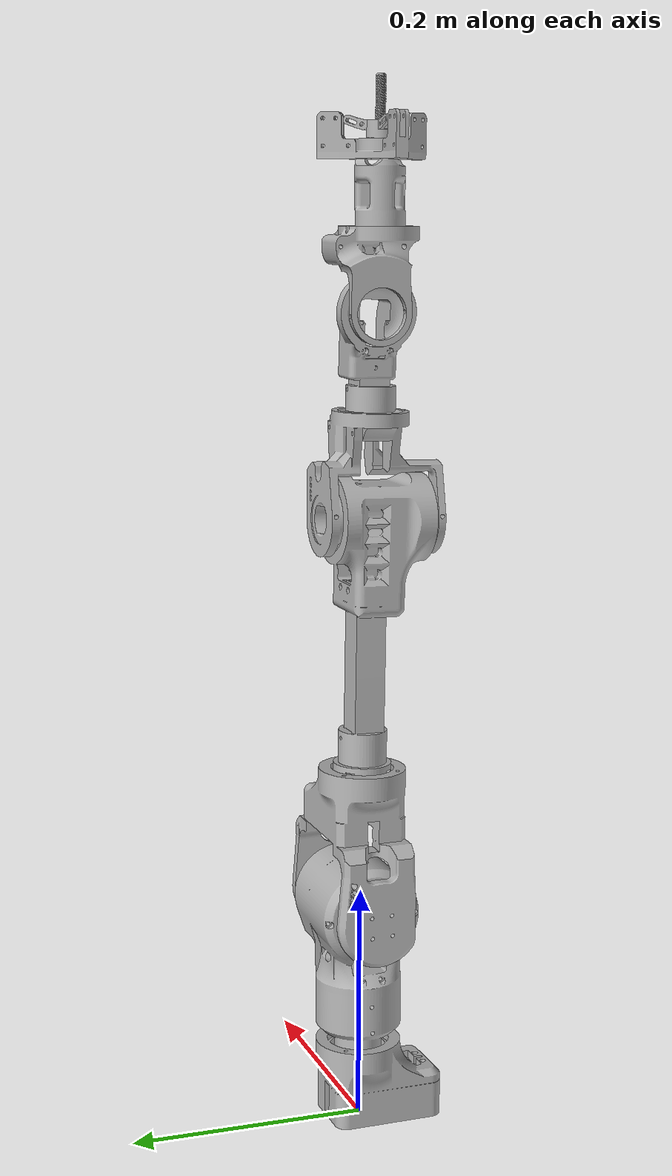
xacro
<?xml version="1.0"?>
<robot xmlns:xacro="http://www.ros.org/wiki/xacro" name="fixy">
    <xacro:arg name="initial_positions_file" default="initial_positions.yaml" />

    <!-- Import fixy urdf file -->
    <xacro:include filename="$(find fixy_description)/urdf/fixy.xacro" />

    <!-- Import control_xacro -->
    <xacro:include filename="fixy.ros2_control.xacro" />

    <xacro:fixy_ros2_control name="FakeSystem" initial_positions_file="$(arg initial_positions_file)"/>

</robot>

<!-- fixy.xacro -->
<robot name="fixy" xmlns:xacro="http://www.ros.org/wiki/xacro">

<xacro:include filename="$(find fixy_description)/urdf/materials.xacro" />
<xacro:include filename="$(find fixy_description)/urdf/fixy.trans" />
<xacro:include filename="$(find fixy_description)/urdf/fixy.gazebo" />
<link name="base_link">
  <inertial>
    <origin xyz="4.3079062075790375e-05 -0.014795380566219278 0.030297395235979695" rpy="0 0 0"/>
    <mass value="1.5044019346439317"/>
    <inertia ixx="0.001861" iyy="0.00125" izz="0.001987" ixy="8e-06" iyz="-0.00022" ixz="-0.0"/>
  </inertial>
  <visual>
    <origin xyz="0 0 0" rpy="0 0 0"/>
    <geometry>
      <mesh filename="file://$(find fixy_description)/meshes/base_link.stl" scale="0.001 0.001 0.001"/>
    </geometry>
    <material name="silver"/>
  </visual>
  <collision>
    <origin xyz="0 0 0" rpy="0 0 0"/>
    <geometry>
      <mesh filename="file://$(find fixy_description)/meshes/base_link.stl" scale="0.001 0.001 0.001"/>
    </geometry>
  </collision>
</link>

<link name="link_6_1">
  <inertial>
    <origin xyz="0.023034762419720613 -0.004152024854015311 0.043798002045938644" rpy="0 0 0"/>
    <mass value="0.3973316984109711"/>
    <inertia ixx="0.000278" iyy="0.000305" izz="0.000349" ixy="2.7e-05" iyz="2.8e-05" ixz="-9e-05"/>
  </inertial>
  <visual>
    <origin xyz="0.037069 -0.003608 -0.683318" rpy="0 0 0"/>
    <geometry>
      <mesh filename="file://$(find fixy_description)/meshes/link_6_1.stl" scale="0.001 0.001 0.001"/>
    </geometry>
    <material name="silver"/>
  </visual>
  <collision>
    <origin xyz="0.037069 -0.003608 -0.683318" rpy="0 0 0"/>
    <geometry>
      <mesh filename="file://$(find fixy_description)/meshes/link_6_1.stl" scale="0.001 0.001 0.001"/>
    </geometry>
  </collision>
</link>

<link name="link_5_1">
  <inertial>
    <origin xyz="-0.0026232713684426184 0.0016361880639096645 0.0476609582246732" rpy="0 0 0"/>
    <mass value="0.5073225606298909"/>
    <inertia ixx="0.000571" iyy="0.000518" izz="0.000188" ixy="-2e-06" iyz="-1e-05" ixz="5.7e-05"/>
  </inertial>
  <visual>
    <origin xyz="0.015158 -0.001576 -0.606138" rpy="0 0 0"/>
    <geometry>
      <mesh filename="file://$(find fixy_description)/meshes/link_5_1.stl" scale="0.001 0.001 0.001"/>
    </geometry>
    <material name="silver"/>
  </visual>
  <collision>
    <origin xyz="0.015158 -0.001576 -0.606138" rpy="0 0 0"/>
    <geometry>
      <mesh filename="file://$(find fixy_description)/meshes/link_5_1.stl" scale="0.001 0.001 0.001"/>
    </geometry>
  </collision>
</link>

<link name="link_4_1">
  <inertial>
    <origin xyz="0.003316988752488391 -0.03689039139940636 0.029627262461477955" rpy="0 0 0"/>
    <mass value="0.9221315203000184"/>
    <inertia ixx="0.002002" iyy="0.00135" izz="0.001306" ixy="1.1e-05" iyz="-0.000151" ixz="-2.7e-05"/>
  </inertial>
  <visual>
    <origin xyz="0.00947 -0.03292 -0.519576" rpy="0 0 0"/>
    <geometry>
      <mesh filename="file://$(find fixy_description)/meshes/link_4_1.stl" scale="0.001 0.001 0.001"/>
    </geometry>
    <material name="silver"/>
  </visual>
  <collision>
    <origin xyz="0.00947 -0.03292 -0.519576" rpy="0 0 0"/>
    <geometry>
      <mesh filename="file://$(find fixy_description)/meshes/link_4_1.stl" scale="0.001 0.001 0.001"/>
    </geometry>
  </collision>
</link>

<link name="link_3_1">
  <inertial>
    <origin xyz="-0.0012728320032024936 -0.0069369398511251006 0.15465930327453498" rpy="0 0 0"/>
    <mass value="1.8925519212467599"/>
    <inertia ixx="0.011168" iyy="0.011189" izz="0.001472" ixy="-2e-06" iyz="0.000528" ixz="7.1e-05"/>
  </inertial>
  <visual>
    <origin xyz="0.007211 -0.002499 -0.311333" rpy="0 0 0"/>
    <geometry>
      <mesh filename="file://$(find fixy_description)/meshes/link_3_1.stl" scale="0.001 0.001 0.001"/>
    </geometry>
    <material name="silver"/>
  </visual>
  <collision>
    <origin xyz="0.007211 -0.002499 -0.311333" rpy="0 0 0"/>
    <geometry>
      <mesh filename="file://$(find fixy_description)/meshes/link_3_1.stl" scale="0.001 0.001 0.001"/>
    </geometry>
  </collision>
</link>

<link name="link_2_1">
  <inertial>
    <origin xyz="0.0426595179554747 0.0013727958459761212 0.04571131695944389" rpy="0 0 0"/>
    <mass value="2.4928743273475353"/>
    <inertia ixx="0.005944" iyy="0.009467" izz="0.00536" ixy="-1.1e-05" iyz="-3.8e-05" ixz="0.000279"/>
  </inertial>
  <visual>
    <origin xyz="0.036409 -0.001343 -0.187469" rpy="0 0 0"/>
    <geometry>
      <mesh filename="file://$(find fixy_description)/meshes/link_2_1.stl" scale="0.001 0.001 0.001"/>
    </geometry>
    <material name="silver"/>
  </visual>
  <collision>
    <origin xyz="0.036409 -0.001343 -0.187469" rpy="0 0 0"/>
    <geometry>
      <mesh filename="file://$(find fixy_description)/meshes/link_2_1.stl" scale="0.001 0.001 0.001"/>
    </geometry>
  </collision>
</link>

<link name="link_1_1">
  <inertial>
    <origin xyz="0.002043435843600446 0.0003273934592496106 0.0767500596176096" rpy="0 0 0"/>
    <mass value="3.3553478369803926"/>
    <inertia ixx="0.009237" iyy="0.009329" izz="0.003194" ixy="-9e-06" iyz="-2.3e-05" ixz="-0.000325"/>
  </inertial>
  <visual>
    <origin xyz="8.2e-05 -0.001141 -0.061517" rpy="0 0 0"/>
    <geometry>
      <mesh filename="file://$(find fixy_description)/meshes/link_1_1.stl" scale="0.001 0.001 0.001"/>
    </geometry>
    <material name="silver"/>
  </visual>
  <collision>
    <origin xyz="8.2e-05 -0.001141 -0.061517" rpy="0 0 0"/>
    <geometry>
      <mesh filename="file://$(find fixy_description)/meshes/link_1_1.stl" scale="0.001 0.001 0.001"/>
    </geometry>
  </collision>
</link>

<link name="link_g_1">
  <inertial>
    <origin xyz="0.00023847275140001056 0.0001706288744163613 -0.04034411486517697" rpy="0 0 0"/>
    <mass value="0.047407696247572004"/>
    <inertia ixx="5e-06" iyy="5e-06" izz="8e-06" ixy="-0.0" iyz="-0.0" ixz="-0.0"/>
  </inertial>
  <visual>
    <origin xyz="0.00211 0.009376 -0.864885" rpy="0 0 0"/>
    <geometry>
      <mesh filename="file://$(find fixy_description)/meshes/link_g_1.stl" scale="0.001 0.001 0.001"/>
    </geometry>
    <material name="silver"/>
  </visual>
  <collision>
    <origin xyz="0.00211 0.009376 -0.864885" rpy="0 0 0"/>
    <geometry>
      <mesh filename="file://$(find fixy_description)/meshes/link_g_1.stl" scale="0.001 0.001 0.001"/>
    </geometry>
  </collision>
</link>

<link name="link_7_1">
  <inertial>
    <origin xyz="-0.0015712537010662087 0.00108325940890373 0.039761960497362026" rpy="0 0 0"/>
    <mass value="0.6172272508588337"/>
    <inertia ixx="0.000564" iyy="0.000564" izz="0.000348" ixy="0.0" iyz="-5e-06" ixz="1e-06"/>
  </inertial>
  <visual>
    <origin xyz="0.00059 0.01057 -0.749129" rpy="0 0 0"/>
    <geometry>
      <mesh filename="file://$(find fixy_description)/meshes/link_7_1.stl" scale="0.001 0.001 0.001"/>
    </geometry>
    <material name="silver"/>
  </visual>
  <collision>
    <origin xyz="0.00059 0.01057 -0.749129" rpy="0 0 0"/>
    <geometry>
      <mesh filename="file://$(find fixy_description)/meshes/link_7_1.stl" scale="0.001 0.001 0.001"/>
    </geometry>
  </collision>
</link>

<joint name="joint_5" type="revolute">
  <origin xyz="-0.021911 0.002032 0.07718" rpy="0 0 0"/>
  <parent link="link_5_1"/>
  <child link="link_6_1"/>
  <axis xyz="-0.999779 0.019261 -0.008466"/>
  <limit upper="1.57" lower="-1.57" effort="10" velocity="1.0"/>
</joint>

<joint name="joint_4" type="revolute">
  <origin xyz="-0.005688 -0.031344 0.086562" rpy="0 0 0"/>
  <parent link="link_4_1"/>
  <child link="link_5_1"/>
  <axis xyz="0.001928 -0.01899 0.999818"/>
  <limit upper="1.57" lower="-1.57" effort="10" velocity="1.0"/>
</joint>

<joint name="joint_3" type="revolute">
  <origin xyz="-0.002259 0.030421 0.208243" rpy="0 0 0"/>
  <parent link="link_3_1"/>
  <child link="link_4_1"/>
  <axis xyz="-0.013292 0.999731 0.019014"/>
  <limit upper="1.57" lower="-1.57" effort="10" velocity="1.0"/>
</joint>

<joint name="joint_2" type="revolute">
  <origin xyz="0.029198 0.001156 0.123864" rpy="0 0 0"/>
  <parent link="link_2_1"/>
  <child link="link_3_1"/>
  <axis xyz="-0.000184 0.007407 -0.999973"/>
  <limit upper="1.57" lower="-1.57" effort="10" velocity="1.0" />
</joint>

<joint name="joint_1" type="revolute">
  <origin xyz="-0.036327 0.000202 0.125952" rpy="0 0 0"/>
  <parent link="link_1_1"/>
  <child link="link_2_1"/>
  <axis xyz="-0.999961 -0.008804 0.000119"/>
  <limit upper="1.57" lower="-1.57" effort="10" velocity="1.0"/>
</joint>

<joint name="joint_0" type="revolute">
  <origin xyz="-8.2e-05 0.001141 0.061517" rpy="0 0 0"/>
  <parent link="base_link"/>
  <child link="link_1_1"/>
  <axis xyz="8.3e-05 0.004139 0.999991"/>
  <limit upper="1.57" lower="-1.57" effort="10" velocity="1.0"/>
</joint>

<joint name="joint_g" type="prismatic">
  <origin xyz="-0.00152 0.001194 0.115756" rpy="0 0 0"/>
  <parent link="link_7_1"/>
  <child link="link_g_1"/>
  <axis xyz="-0.005276 -0.002942 0.999982"/>
  <limit upper="0.03" lower="0.00" effort="10" velocity="1.0"/>
</joint>

<joint name="joint_7" type="revolute">
  <origin xyz="0.036479 -0.014178 0.065811" rpy="0 0 0"/>
  <parent link="link_6_1"/>
  <child link="link_7_1"/>
  <axis xyz="-0.005276 -0.002942 0.999982"/>
  <limit upper="1.57" lower="-1.57" effort="10" velocity="1.0"/>
</joint>

</robot>

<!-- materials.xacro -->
<robot name="fixy" xmlns:xacro="http://www.ros.org/wiki/xacro" >

<material name="silver">
  <color rgba="0.700 0.700 0.700 1.000"/>
</material>

</robot>

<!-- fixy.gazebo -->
<robot name="fixy" xmlns:xacro="http://www.ros.org/wiki/xacro" >

<xacro:property name="body_color" value="Gazebo/Silver" />

<gazebo>
  <plugin name="control" filename="libgazebo_ros_control.so"/>
</gazebo>
<gazebo reference="base_link">
  <material>${body_color}</material>
  <mu1>0.2</mu1>
  <mu2>0.2</mu2>
  <self_collide>true</self_collide>
  <gravity>true</gravity>
</gazebo>

<gazebo reference="link_6_1">
  <material>${body_color}</material>
  <mu1>0.2</mu1>
  <mu2>0.2</mu2>
  <self_collide>true</self_collide>
</gazebo>

<gazebo reference="link_5_1">
  <material>${body_color}</material>
  <mu1>0.2</mu1>
  <mu2>0.2</mu2>
  <self_collide>true</self_collide>
</gazebo>

<gazebo reference="link_4_1">
  <material>${body_color}</material>
  <mu1>0.2</mu1>
  <mu2>0.2</mu2>
  <self_collide>true</self_collide>
</gazebo>

<gazebo reference="link_3_1">
  <material>${body_color}</material>
  <mu1>0.2</mu1>
  <mu2>0.2</mu2>
  <self_collide>true</self_collide>
</gazebo>

<gazebo reference="link_2_1">
  <material>${body_color}</material>
  <mu1>0.2</mu1>
  <mu2>0.2</mu2>
  <self_collide>true</self_collide>
</gazebo>

<gazebo reference="link_1_1">
  <material>${body_color}</material>
  <mu1>0.2</mu1>
  <mu2>0.2</mu2>
  <self_collide>true</self_collide>
</gazebo>

<gazebo reference="link_g_1">
  <material>${body_color}</material>
  <mu1>0.2</mu1>
  <mu2>0.2</mu2>
  <self_collide>true</self_collide>
</gazebo>

<gazebo reference="link_7_1">
  <material>${body_color}</material>
  <mu1>0.2</mu1>
  <mu2>0.2</mu2>
  <self_collide>true</self_collide>
</gazebo>

</robot>
